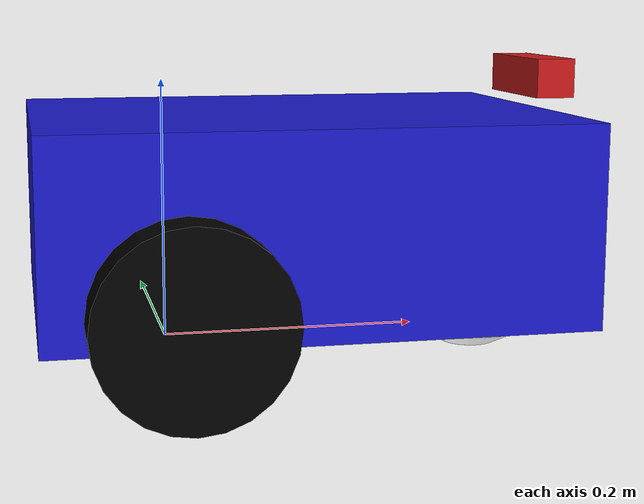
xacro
<?xml version="1.0"?>
<robot xmlns:xacro="http://www.ros.org/wiki/xacro" name="autonomous_car">

  <!-- Materials -->
  <material name="blue">
    <color rgba="0.1 0.1 0.8 1.0"/>
  </material>
  <material name="black">
    <color rgba="0.0 0.0 0.0 1.0"/>
  </material>
  <material name="white">
    <color rgba="1.0 1.0 1.0 1.0"/>
  </material>
  <material name="red">
    <color rgba="0.8 0.1 0.1 1.0"/>
  </material>

  <!-- Base Link (Chassis) -->
  <link name="base_footprint"/>

  <joint name="base_joint" type="fixed">
    <parent link="base_footprint"/>
    <child link="chassis"/>
    <origin xyz="0 0 0.1" rpy="0 0 0"/>
  </joint>

  <link name="chassis">
    <visual>
      <origin xyz="0.1 0 0" rpy="0 0 0"/>
      <geometry>
        <box size="0.4 0.3 0.15"/>
      </geometry>
      <material name="blue"/>
    </visual>
    <collision>
      <origin xyz="0.1 0 0" rpy="0 0 0"/>
      <geometry>
        <box size="0.4 0.3 0.15"/>
      </geometry>
    </collision>
    <inertial>
      <origin xyz="0.1 0 0" rpy="0 0 0"/>
      <mass value="5.0"/>
      <inertia ixx="0.0468" ixy="0.0" ixz="0.0" iyy="0.076" iyz="0.0" izz="0.104"/>
    </inertial>
  </link>

  <gazebo reference="chassis">
    <material>Gazebo/Blue</material>
  </gazebo>

  <!-- Left Wheel -->
  <joint name="left_wheel_joint" type="continuous">
    <parent link="chassis"/>
    <child link="left_wheel"/>
    <origin xyz="0 0.175 -0.05" rpy="-${pi/2} 0 0"/>
    <axis xyz="0 0 1"/>
  </joint>

  <link name="left_wheel">
    <visual>
      <geometry>
        <cylinder radius="0.07" length="0.04"/>
      </geometry>
      <material name="black"/>
    </visual>
    <collision>
      <geometry>
        <cylinder radius="0.07" length="0.04"/>
      </geometry>
    </collision>
    <inertial>
      <mass value="0.5"/>
      <inertia ixx="0.00067" ixy="0.0" ixz="0.0" iyy="0.00067" iyz="0.0" izz="0.0012"/>
    </inertial>
  </link>

  <gazebo reference="left_wheel">
    <material>Gazebo/Black</material>
    <mu1 value="1.0"/>
    <mu2 value="1.0"/>
  </gazebo>

  <!-- Right Wheel -->
  <joint name="right_wheel_joint" type="continuous">
    <parent link="chassis"/>
    <child link="right_wheel"/>
    <origin xyz="0 -0.175 -0.05" rpy="${pi/2} 0 0"/>
    <axis xyz="0 0 -1"/>
  </joint>

  <link name="right_wheel">
    <visual>
      <geometry>
        <cylinder radius="0.07" length="0.04"/>
      </geometry>
      <material name="black"/>
    </visual>
    <collision>
      <geometry>
        <cylinder radius="0.07" length="0.04"/>
      </geometry>
    </collision>
    <inertial>
      <mass value="0.5"/>
      <inertia ixx="0.00067" ixy="0.0" ixz="0.0" iyy="0.00067" iyz="0.0" izz="0.0012"/>
    </inertial>
  </link>

  <gazebo reference="right_wheel">
    <material>Gazebo/Black</material>
    <mu1 value="1.0"/>
    <mu2 value="1.0"/>
  </gazebo>

  <!-- Caster Wheel (Ball) -->
  <joint name="caster_wheel_joint" type="fixed">
    <parent link="chassis"/>
    <child link="caster_wheel"/>
    <origin xyz="0.25 0 -0.05" rpy="0 0 0"/>
  </joint>

  <link name="caster_wheel">
    <visual>
      <geometry>
        <sphere radius="0.07"/>
      </geometry>
      <material name="white"/>
    </visual>
    <collision>
      <geometry>
        <sphere radius="0.07"/>
      </geometry>
    </collision>
    <inertial>
      <mass value="0.2"/>
      <inertia ixx="0.00039" ixy="0.0" ixz="0.0" iyy="0.00039" iyz="0.0" izz="0.00039"/>
    </inertial>
  </link>

  <gazebo reference="caster_wheel">
    <material>Gazebo/White</material>
    <mu1 value="0.001"/>
    <mu2 value="0.001"/>
  </gazebo>

  <!-- Depth Camera -->
  <joint name="camera_joint" type="fixed">
    <parent link="chassis"/>
    <child link="camera_link"/>
    <origin xyz="0.3 0 0.1" rpy="0 0 0"/>
  </joint>

  <link name="camera_link">
    <visual>
      <geometry>
        <box size="0.03 0.1 0.03"/>
      </geometry>
      <material name="red"/>
    </visual>
    <collision>
      <geometry>
        <box size="0.03 0.1 0.03"/>
      </geometry>
    </collision>
  </link>

  <!-- Optical frame for ROS camera conventions -->
  <joint name="camera_optical_joint" type="fixed">
    <parent link="camera_link"/>
    <child link="camera_link_optical"/>
    <origin xyz="0 0 0" rpy="-${pi/2} 0 -${pi/2}"/>
  </joint>

  <link name="camera_link_optical"/>

  <gazebo reference="camera_link">
    <material>Gazebo/Red</material>
    <sensor type="depth" name="depth_camera">
      <update_rate>15.0</update_rate>
      <camera name="head">
        <horizontal_fov>1.089</horizontal_fov>
        <image>
          <width>640</width>
          <height>480</height>
          <format>R8G8B8</format>
        </image>
        <clip>
          <near>0.05</near>
          <far>5000.0</far>
        </clip>
      </camera>
      <plugin name="camera_controller" filename="libgazebo_ros_camera.so">
        <ros>
          <!-- Keep it organized -->
          <remapping>custom_camera/image_raw:=camera/image_raw</remapping>
          <remapping>custom_camera/depth/image_raw:=camera/depth/image_raw</remapping>
          <remapping>custom_camera/points:=camera/points</remapping>
        </ros>
        <camera_name>camera</camera_name>
        <frame_name>camera_link_optical</frame_name>
        <hack_baseline>0.07</hack_baseline>
        <min_depth>0.1</min_depth>
        <max_depth>8.0</max_depth>
      </plugin>
    </sensor>
  </gazebo>

  <!-- Diff Drive Plugin -->
  <gazebo>
    <plugin name="gazebo_ros_diff_drive" filename="libgazebo_ros_diff_drive.so">
      <!-- Limits -->
      <max_wheel_torque>20</max_wheel_torque>
      <max_wheel_acceleration>1.0</max_wheel_acceleration>

      <!-- Input -->
      <command_topic>cmd_vel</command_topic>

      <!-- Output -->
      <publish_odom>true</publish_odom>
      <publish_odom_tf>true</publish_odom_tf>
      <publish_wheel_tf>true</publish_wheel_tf>

      <odometry_topic>odom</odometry_topic>
      <odometry_frame>odom</odometry_frame>
      <robot_base_frame>base_footprint</robot_base_frame>

      <!-- Joints -->
      <left_joint>left_wheel_joint</left_joint>
      <right_joint>right_wheel_joint</right_joint>

      <!-- Kinematics -->
      <wheel_separation>0.35</wheel_separation>
      <wheel_diameter>0.14</wheel_diameter>
    </plugin>
  </gazebo>

</robot>
